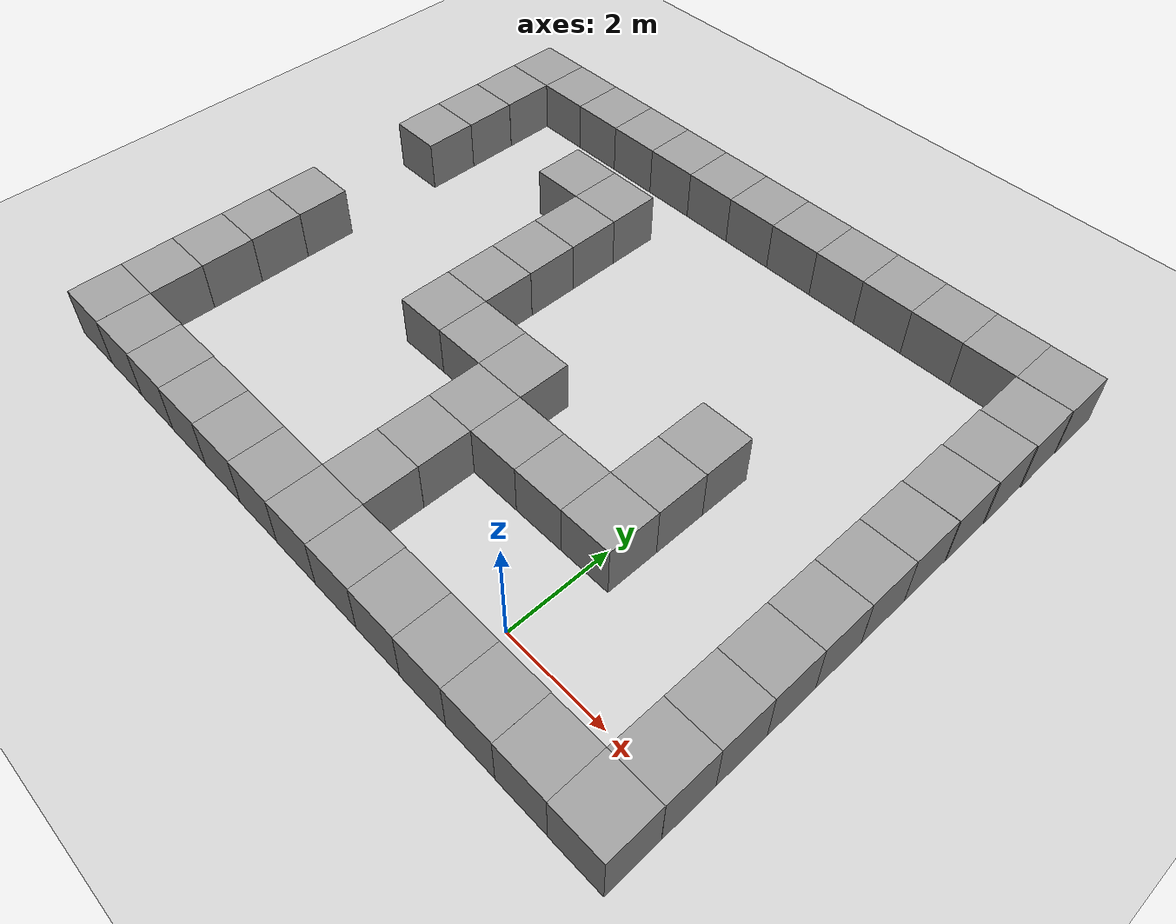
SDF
<sdf version="1.6">
 <world name="default">
  <light name="sun" type="directional">
   <pose>0 0 10 0 -0 0</pose>
   <diffuse>0.8 0.8 0.8 1</diffuse>
   <specular>0.2 0.2 0.2 1</specular>
   <attenuation>
    <range>1000</range>
    <constant>0.9</constant>
    <linear>0.01</linear>
    <quadratic>0.001</quadratic>
   </attenuation>
   <direction>-0.5 0.1 -0.9</direction>
  </light>
  <model name="ground_plane">
   <static>1</static>
   <link name="link">
    <collision name="collision">
     <geometry><plane><normal>0 0 1</normal><size>100 100</size></plane></geometry>
     <surface>
      <contact><collide_bitmask>65535</collide_bitmask></contact>
      <friction><ode><mu>100</mu><mu2>50</mu2></ode></friction>
     </surface>
    </collision>
    <visual name="visual">
     <cast_shadows>0</cast_shadows>
     <geometry><plane><normal>0 0 1</normal><size>100 100</size></plane></geometry>
     <material>
      <script><uri>file://media/materials/scripts/gazebo.material</uri><name>Gazebo/Grey</name></script>
     </material>
    </visual>
   </link>
  </model>
  <gravity>0 0 -9.8</gravity>
  <magnetic_field>6e-06 2.3e-05 -4.2e-05</magnetic_field>
  <atmosphere type="adiabatic"/>
  <physics name="default_physics" default="0" type="ode">
   <max_step_size>0.001</max_step_size>
   <real_time_factor>1</real_time_factor>
   <real_time_update_rate>1000</real_time_update_rate>
  </physics>
  <scene><ambient>0.4 0.4 0.4 1</ambient><background>0.7 0.7 0.7 1</background><shadows>1</shadows></scene>
  <audio><device>default</device></audio>
  <spherical_coordinates>
   <surface_model>EARTH_WGS84</surface_model>
   <latitude_deg>0</latitude_deg>
   <longitude_deg>0</longitude_deg>
   <elevation>0</elevation>
   <heading_deg>0</heading_deg>
  </spherical_coordinates>
  <model name="unit_box">
   <pose>1 -1 0.5 0 -0 0.004024</pose>
   <link name="link">
    <inertial>
     <mass>1</mass>
     <inertia>
      <ixx>0.166667</ixx>
      <ixy>0</ixy>
      <ixz>0</ixz>
      <iyy>0.166667</iyy>
      <iyz>0</iyz>
      <izz>0.166667</izz>
     </inertia>
    </inertial>
    <collision name="collision"><geometry><box><size>1 1 1</size></box></geometry></collision>
    <visual name="visual">
     <geometry><box><size>1 1 1</size></box></geometry>
     <material>
      <script><name>Gazebo/Grey</name><uri>file://media/materials/scripts/gazebo.material</uri></script>
     </material>
    </visual>
   </link>
  </model>
  <model name="unit_box_0">
   <pose>2 -1 0.5 0 -0 0.004728</pose>
   <link name="link">
    <inertial>
     <mass>1</mass>
     <inertia>
      <ixx>0.166667</ixx>
      <ixy>0</ixy>
      <ixz>0</ixz>
      <iyy>0.166667</iyy>
      <iyz>0</iyz>
      <izz>0.166667</izz>
     </inertia>
    </inertial>
    <collision name="collision"><geometry><box><size>1 1 1</size></box></geometry></collision>
    <visual name="visual">
     <geometry><box><size>1 1 1</size></box></geometry>
     <material>
      <script><name>Gazebo/Grey</name><uri>file://media/materials/scripts/gazebo.material</uri></script>
     </material>
    </visual>
   </link>
  </model>
  <model name="unit_box_1">
   <pose>3 -1 0.5 0 -0 0.004727</pose>
   <link name="link">
    <inertial>
     <mass>1</mass>
     <inertia>
      <ixx>0.166667</ixx>
      <ixy>0</ixy>
      <ixz>0</ixz>
      <iyy>0.166667</iyy>
      <iyz>0</iyz>
      <izz>0.166667</izz>
     </inertia>
    </inertial>
    <collision name="collision"><geometry><box><size>1 1 1</size></box></geometry></collision>
    <visual name="visual">
     <geometry><box><size>1 1 1</size></box></geometry>
     <material>
      <script><name>Gazebo/Grey</name><uri>file://media/materials/scripts/gazebo.material</uri></script>
     </material>
    </visual>
   </link>
  </model>
  <model name="unit_box_3">
   <pose>-9 -1 0.5 0 -0 0.001321</pose>
   <link name="link">
    <inertial>
     <mass>1</mass>
     <inertia>
      <ixx>0.166667</ixx>
      <ixy>0</ixy>
      <ixz>0</ixz>
      <iyy>0.166667</iyy>
      <iyz>0</iyz>
      <izz>0.166667</izz>
     </inertia>
    </inertial>
    <collision name="collision"><geometry><box><size>1 1 1</size></box></geometry></collision>
    <visual name="visual">
     <geometry><box><size>1 1 1</size></box></geometry>
     <material>
      <script><name>Gazebo/Grey</name><uri>file://media/materials/scripts/gazebo.material</uri></script>
     </material>
    </visual>
   </link>
  </model>
  <model name="unit_box_2">
   <pose>-8 -1 0.5 0 -0 0.00491</pose>
   <link name="link">
    <inertial>
     <mass>1</mass>
     <inertia>
      <ixx>0.166667</ixx>
      <ixy>0</ixy>
      <ixz>0</ixz>
      <iyy>0.166667</iyy>
      <iyz>0</iyz>
      <izz>0.166667</izz>
     </inertia>
    </inertial>
    <collision name="collision"><geometry><box><size>1 1 1</size></box></geometry></collision>
    <visual name="visual">
     <geometry><box><size>1 1 1</size></box></geometry>
     <material>
      <script><name>Gazebo/Grey</name><uri>file://media/materials/scripts/gazebo.material</uri></script>
     </material>
    </visual>
   </link>
  </model>
  <model name="unit_box_4">
   <pose>-7 -1 0.5 0 -0 0.005141</pose>
   <link name="link">
    <inertial>
     <mass>1</mass>
     <inertia>
      <ixx>0.166667</ixx>
      <ixy>0</ixy>
      <ixz>0</ixz>
      <iyy>0.166667</iyy>
      <iyz>0</iyz>
      <izz>0.166667</izz>
     </inertia>
    </inertial>
    <collision name="collision"><geometry><box><size>1 1 1</size></box></geometry></collision>
    <visual name="visual">
     <geometry><box><size>1 1 1</size></box></geometry>
     <material>
      <script><name>Gazebo/Grey</name><uri>file://media/materials/scripts/gazebo.material</uri></script>
     </material>
    </visual>
   </link>
  </model>
  <model name="unit_box_5">
   <pose>-6 -1 0.5 0 -0 0.005232</pose>
   <link name="link">
    <inertial>
     <mass>1</mass>
     <inertia>
      <ixx>0.166667</ixx>
      <ixy>0</ixy>
      <ixz>0</ixz>
      <iyy>0.166667</iyy>
      <iyz>0</iyz>
      <izz>0.166667</izz>
     </inertia>
    </inertial>
    <collision name="collision"><geometry><box><size>1 1 1</size></box></geometry></collision>
    <visual name="visual">
     <geometry><box><size>1 1 1</size></box></geometry>
     <material>
      <script><name>Gazebo/Grey</name><uri>file://media/materials/scripts/gazebo.material</uri></script>
     </material>
    </visual>
   </link>
  </model>
  <model name="unit_box_6">
   <pose>-5 -1 0.5 0 -0 0.005085</pose>
   <link name="link">
    <inertial>
     <mass>1</mass>
     <inertia>
      <ixx>0.166667</ixx>
      <ixy>0</ixy>
      <ixz>0</ixz>
      <iyy>0.166667</iyy>
      <iyz>0</iyz>
      <izz>0.166667</izz>
     </inertia>
    </inertial>
    <collision name="collision"><geometry><box><size>1 1 1</size></box></geometry></collision>
    <visual name="visual">
     <geometry><box><size>1 1 1</size></box></geometry>
     <material>
      <script><name>Gazebo/Grey</name><uri>file://media/materials/scripts/gazebo.material</uri></script>
     </material>
    </visual>
   </link>
  </model>
  <model name="unit_box_7">
   <pose>-4 -1 0.5 0 -0 0.003658</pose>
   <link name="link">
    <inertial>
     <mass>1</mass>
     <inertia>
      <ixx>0.166667</ixx>
      <ixy>0</ixy>
      <ixz>0</ixz>
      <iyy>0.166667</iyy>
      <iyz>0</iyz>
      <izz>0.166667</izz>
     </inertia>
    </inertial>
    <collision name="collision"><geometry><box><size>1 1 1</size></box></geometry></collision>
    <visual name="visual">
     <geometry><box><size>1 1 1</size></box></geometry>
     <material>
      <script><name>Gazebo/Grey</name><uri>file://media/materials/scripts/gazebo.material</uri></script>
     </material>
    </visual>
   </link>
  </model>
  <model name="unit_box_8">
   <pose>-3 -1 0.5 0 -0 0.003064</pose>
   <link name="link">
    <inertial>
     <mass>1</mass>
     <inertia>
      <ixx>0.166667</ixx>
      <ixy>0</ixy>
      <ixz>0</ixz>
      <iyy>0.166667</iyy>
      <iyz>0</iyz>
      <izz>0.166667</izz>
     </inertia>
    </inertial>
    <collision name="collision"><geometry><box><size>1 1 1</size></box></geometry></collision>
    <visual name="visual">
     <geometry><box><size>1 1 1</size></box></geometry>
     <material>
      <script><name>Gazebo/Grey</name><uri>file://media/materials/scripts/gazebo.material</uri></script>
     </material>
    </visual>
   </link>
  </model>
  <model name="unit_box_9">
   <pose>-2 -1 0.5 0 -0 0.00444</pose>
   <link name="link">
    <inertial>
     <mass>1</mass>
     <inertia>
      <ixx>0.166667</ixx>
      <ixy>0</ixy>
      <ixz>0</ixz>
      <iyy>0.166667</iyy>
      <iyz>0</iyz>
      <izz>0.166667</izz>
     </inertia>
    </inertial>
    <collision name="collision"><geometry><box><size>1 1 1</size></box></geometry></collision>
    <visual name="visual">
     <geometry><box><size>1 1 1</size></box></geometry>
     <material>
      <script><name>Gazebo/Grey</name><uri>file://media/materials/scripts/gazebo.material</uri></script>
     </material>
    </visual>
   </link>
  </model>
  <model name="unit_box_10">
   <pose>-1 -1 0.5 0 -0 0.004441</pose>
   <link name="link">
    <inertial>
     <mass>1</mass>
     <inertia>
      <ixx>0.166667</ixx>
      <ixy>0</ixy>
      <ixz>0</ixz>
      <iyy>0.166667</iyy>
      <iyz>0</iyz>
      <izz>0.166667</izz>
     </inertia>
    </inertial>
    <collision name="collision"><geometry><box><size>1 1 1</size></box></geometry></collision>
    <visual name="visual">
     <geometry><box><size>1 1 1</size></box></geometry>
     <material>
      <script><name>Gazebo/Grey</name><uri>file://media/materials/scripts/gazebo.material</uri></script>
     </material>
    </visual>
   </link>
  </model>
  <model name="unit_box_11">
   <pose>0 -1 0.5 0 -0 0.004438</pose>
   <link name="link">
    <inertial>
     <mass>1</mass>
     <inertia>
      <ixx>0.166667</ixx>
      <ixy>0</ixy>
      <ixz>0</ixz>
      <iyy>0.166667</iyy>
      <iyz>0</iyz>
      <izz>0.166667</izz>
     </inertia>
    </inertial>
    <collision name="collision"><geometry><box><size>1 1 1</size></box></geometry></collision>
    <visual name="visual">
     <geometry><box><size>1 1 1</size></box></geometry>
     <material>
      <script><name>Gazebo/Grey</name><uri>file://media/materials/scripts/gazebo.material</uri></script>
     </material>
    </visual>
   </link>
  </model>
  <model name="unit_box_12">
   <pose>-9 -0 0.5 0 -0 0.000629</pose>
   <link name="link">
    <inertial>
     <mass>1</mass>
     <inertia>
      <ixx>0.166667</ixx>
      <ixy>0</ixy>
      <ixz>0</ixz>
      <iyy>0.166667</iyy>
      <iyz>0</iyz>
      <izz>0.166667</izz>
     </inertia>
    </inertial>
    <collision name="collision"><geometry><box><size>1 1 1</size></box></geometry></collision>
    <visual name="visual">
     <geometry><box><size>1 1 1</size></box></geometry>
     <material>
      <script><name>Gazebo/Grey</name><uri>file://media/materials/scripts/gazebo.material</uri></script>
     </material>
    </visual>
   </link>
  </model>
  <model name="unit_box_13">
   <pose>-3 -0 0.5 0 -0 0.00068</pose>
   <link name="link">
    <inertial>
     <mass>1</mass>
     <inertia>
      <ixx>0.166667</ixx>
      <ixy>0</ixy>
      <ixz>0</ixz>
      <iyy>0.166667</iyy>
      <iyz>0</iyz>
      <izz>0.166667</izz>
     </inertia>
    </inertial>
    <collision name="collision"><geometry><box><size>1 1 1</size></box></geometry></collision>
    <visual name="visual">
     <geometry><box><size>1 1 1</size></box></geometry>
     <material>
      <script><name>Gazebo/Grey</name><uri>file://media/materials/scripts/gazebo.material</uri></script>
     </material>
    </visual>
   </link>
  </model>
  <model name="unit_box_14">
   <pose>-3 1 0.5 0 -0 0.00068</pose>
   <link name="link">
    <inertial>
     <mass>1</mass>
     <inertia>
      <ixx>0.166667</ixx>
      <ixy>0</ixy>
      <ixz>0</ixz>
      <iyy>0.166667</iyy>
      <iyz>0</iyz>
      <izz>0.166667</izz>
     </inertia>
    </inertial>
    <collision name="collision"><geometry><box><size>1 1 1</size></box></geometry></collision>
    <visual name="visual">
     <geometry><box><size>1 1 1</size></box></geometry>
     <material>
      <script><name>Gazebo/Grey</name><uri>file://media/materials/scripts/gazebo.material</uri></script>
     </material>
    </visual>
   </link>
  </model>
  <model name="unit_box_15">
   <pose>-3 2 0.5 0 -0 0.000619</pose>
   <link name="link">
    <inertial>
     <mass>1</mass>
     <inertia>
      <ixx>0.166667</ixx>
      <ixy>0</ixy>
      <ixz>0</ixz>
      <iyy>0.166667</iyy>
      <iyz>0</iyz>
      <izz>0.166667</izz>
     </inertia>
    </inertial>
    <collision name="collision"><geometry><box><size>1 1 1</size></box></geometry></collision>
    <visual name="visual">
     <geometry><box><size>1 1 1</size></box></geometry>
     <material>
      <script><name>Gazebo/Grey</name><uri>file://media/materials/scripts/gazebo.material</uri></script>
     </material>
    </visual>
   </link>
  </model>
  <model name="unit_box_16">
   <pose>-3 3 0.5 0 -0 0.001327</pose>
   <link name="link">
    <inertial>
     <mass>1</mass>
     <inertia>
      <ixx>0.166667</ixx>
      <ixy>0</ixy>
      <ixz>0</ixz>
      <iyy>0.166667</iyy>
      <iyz>0</iyz>
      <izz>0.166667</izz>
     </inertia>
    </inertial>
    <collision name="collision"><geometry><box><size>1 1 1</size></box></geometry></collision>
    <visual name="visual">
     <geometry><box><size>1 1 1</size></box></geometry>
     <material>
      <script><name>Gazebo/Grey</name><uri>file://media/materials/scripts/gazebo.material</uri></script>
     </material>
    </visual>
   </link>
  </model>
  <model name="unit_box_17">
   <pose>-4 3 0.5 0 -0 0.001326</pose>
   <link name="link">
    <inertial>
     <mass>1</mass>
     <inertia>
      <ixx>0.166667</ixx>
      <ixy>0</ixy>
      <ixz>0</ixz>
      <iyy>0.166667</iyy>
      <iyz>0</iyz>
      <izz>0.166667</izz>
     </inertia>
    </inertial>
    <collision name="collision"><geometry><box><size>1 1 1</size></box></geometry></collision>
    <visual name="visual">
     <geometry><box><size>1 1 1</size></box></geometry>
     <material>
      <script><name>Gazebo/Grey</name><uri>file://media/materials/scripts/gazebo.material</uri></script>
     </material>
    </visual>
   </link>
  </model>
  <model name="unit_box_18">
   <pose>-5 3 0.5 0 -0 0.000827</pose>
   <link name="link">
    <inertial>
     <mass>1</mass>
     <inertia>
      <ixx>0.166667</ixx>
      <ixy>0</ixy>
      <ixz>0</ixz>
      <iyy>0.166667</iyy>
      <iyz>0</iyz>
      <izz>0.166667</izz>
     </inertia>
    </inertial>
    <collision name="collision"><geometry><box><size>1 1 1</size></box></geometry></collision>
    <visual name="visual">
     <geometry><box><size>1 1 1</size></box></geometry>
     <material>
      <script><name>Gazebo/Grey</name><uri>file://media/materials/scripts/gazebo.material</uri></script>
     </material>
    </visual>
   </link>
  </model>
  <model name="unit_box_19">
   <pose>-5 4 0.5 0 -0 0.000773</pose>
   <link name="link">
    <inertial>
     <mass>1</mass>
     <inertia>
      <ixx>0.166667</ixx>
      <ixy>0</ixy>
      <ixz>0</ixz>
      <iyy>0.166667</iyy>
      <iyz>0</iyz>
      <izz>0.166667</izz>
     </inertia>
    </inertial>
    <collision name="collision"><geometry><box><size>1 1 1</size></box></geometry></collision>
    <visual name="visual">
     <geometry><box><size>1 1 1</size></box></geometry>
     <material>
      <script><name>Gazebo/Grey</name><uri>file://media/materials/scripts/gazebo.material</uri></script>
     </material>
    </visual>
   </link>
  </model>
  <model name="unit_box_20">
   <pose>-5 5 0.5 0 -0 0.000767</pose>
   <link name="link">
    <inertial>
     <mass>1</mass>
     <inertia>
      <ixx>0.166667</ixx>
      <ixy>0</ixy>
      <ixz>0</ixz>
      <iyy>0.166667</iyy>
      <iyz>0</iyz>
      <izz>0.166667</izz>
     </inertia>
    </inertial>
    <collision name="collision"><geometry><box><size>1 1 1</size></box></geometry></collision>
    <visual name="visual">
     <geometry><box><size>1 1 1</size></box></geometry>
     <material>
      <script><name>Gazebo/Grey</name><uri>file://media/materials/scripts/gazebo.material</uri></script>
     </material>
    </visual>
   </link>
  </model>
  <model name="unit_box_21">
   <pose>-5 6 0.5 0 -0 -1.3e-05</pose>
   <link name="link">
    <inertial>
     <mass>1</mass>
     <inertia>
      <ixx>0.166667</ixx>
      <ixy>0</ixy>
      <ixz>0</ixz>
      <iyy>0.166667</iyy>
      <iyz>0</iyz>
      <izz>0.166667</izz>
     </inertia>
    </inertial>
    <collision name="collision"><geometry><box><size>1 1 1</size></box></geometry></collision>
    <visual name="visual">
     <geometry><box><size>1 1 1</size></box></geometry>
     <material>
      <script><name>Gazebo/Grey</name><uri>file://media/materials/scripts/gazebo.material</uri></script>
     </material>
    </visual>
   </link>
  </model>
  <model name="unit_box_22">
   <pose>-5 7 0.5 0 -0 -1.3e-05</pose>
   <link name="link">
    <inertial>
     <mass>1</mass>
     <inertia>
      <ixx>0.166667</ixx>
      <ixy>0</ixy>
      <ixz>0</ixz>
      <iyy>0.166667</iyy>
      <iyz>0</iyz>
      <izz>0.166667</izz>
     </inertia>
    </inertial>
    <collision name="collision"><geometry><box><size>1 1 1</size></box></geometry></collision>
    <visual name="visual">
     <geometry><box><size>1 1 1</size></box></geometry>
     <material>
      <script><name>Gazebo/Grey</name><uri>file://media/materials/scripts/gazebo.material</uri></script>
     </material>
    </visual>
   </link>
  </model>
  <model name="unit_box_23">
   <pose>-6 7 0.5 0 -0 5e-06</pose>
   <link name="link">
    <inertial>
     <mass>1</mass>
     <inertia>
      <ixx>0.166667</ixx>
      <ixy>0</ixy>
      <ixz>0</ixz>
      <iyy>0.166667</iyy>
      <iyz>0</iyz>
      <izz>0.166667</izz>
     </inertia>
    </inertial>
    <collision name="collision"><geometry><box><size>1 1 1</size></box></geometry></collision>
    <visual name="visual">
     <geometry><box><size>1 1 1</size></box></geometry>
     <material>
      <script><name>Gazebo/Grey</name><uri>file://media/materials/scripts/gazebo.material</uri></script>
     </material>
    </visual>
   </link>
  </model>
  <model name="unit_box_24">
   <pose>-9 1 0.5 0 -0 0.000471</pose>
   <link name="link">
    <inertial>
     <mass>1</mass>
     <inertia>
      <ixx>0.166667</ixx>
      <ixy>0</ixy>
      <ixz>0</ixz>
      <iyy>0.166667</iyy>
      <iyz>0</iyz>
      <izz>0.166667</izz>
     </inertia>
    </inertial>
    <collision name="collision"><geometry><box><size>1 1 1</size></box></geometry></collision>
    <visual name="visual">
     <geometry><box><size>1 1 1</size></box></geometry>
     <material>
      <script><name>Gazebo/Grey</name><uri>file://media/materials/scripts/gazebo.material</uri></script>
     </material>
    </visual>
   </link>
  </model>
  <model name="unit_box_25">
   <pose>-9 2 0.499995 -1e-05 0 0.000464</pose>
   <link name="link">
    <inertial>
     <mass>1</mass>
     <inertia>
      <ixx>0.166667</ixx>
      <ixy>0</ixy>
      <ixz>0</ixz>
      <iyy>0.166667</iyy>
      <iyz>0</iyz>
      <izz>0.166667</izz>
     </inertia>
    </inertial>
    <collision name="collision"><geometry><box><size>1 1 1</size></box></geometry></collision>
    <visual name="visual">
     <geometry><box><size>1 1 1</size></box></geometry>
     <material>
      <script><name>Gazebo/Grey</name><uri>file://media/materials/scripts/gazebo.material</uri></script>
     </material>
    </visual>
   </link>
  </model>
  <model name="unit_box_26">
   <pose>-9 3 0.499995 1e-05 -0 0.000391</pose>
   <link name="link">
    <inertial>
     <mass>1</mass>
     <inertia>
      <ixx>0.166667</ixx>
      <ixy>0</ixy>
      <ixz>0</ixz>
      <iyy>0.166667</iyy>
      <iyz>0</iyz>
      <izz>0.166667</izz>
     </inertia>
    </inertial>
    <collision name="collision"><geometry><box><size>1 1 1</size></box></geometry></collision>
    <visual name="visual">
     <geometry><box><size>1 1 1</size></box></geometry>
     <material>
      <script><name>Gazebo/Grey</name><uri>file://media/materials/scripts/gazebo.material</uri></script>
     </material>
    </visual>
   </link>
  </model>
  <model name="unit_box_28">
   <pose>-9 6 0.5 0 -0 3.6e-05</pose>
   <link name="link">
    <inertial>
     <mass>1</mass>
     <inertia>
      <ixx>0.166667</ixx>
      <ixy>0</ixy>
      <ixz>0</ixz>
      <iyy>0.166667</iyy>
      <iyz>0</iyz>
      <izz>0.166667</izz>
     </inertia>
    </inertial>
    <collision name="collision"><geometry><box><size>1 1 1</size></box></geometry></collision>
    <visual name="visual">
     <geometry><box><size>1 1 1</size></box></geometry>
     <material>
      <script><name>Gazebo/Grey</name><uri>file://media/materials/scripts/gazebo.material</uri></script>
     </material>
    </visual>
   </link>
  </model>
  <model name="unit_box_29">
   <pose>-9 7 0.5 0 -0 0.000604</pose>
   <link name="link">
    <inertial>
     <mass>1</mass>
     <inertia>
      <ixx>0.166667</ixx>
      <ixy>0</ixy>
      <ixz>0</ixz>
      <iyy>0.166667</iyy>
      <iyz>0</iyz>
      <izz>0.166667</izz>
     </inertia>
    </inertial>
    <collision name="collision"><geometry><box><size>1 1 1</size></box></geometry></collision>
    <visual name="visual">
     <geometry><box><size>1 1 1</size></box></geometry>
     <material>
      <script><name>Gazebo/Grey</name><uri>file://media/materials/scripts/gazebo.material</uri></script>
     </material>
    </visual>
   </link>
  </model>
  <model name="unit_box_30">
   <pose>-9 8 0.5 0 -0 0.001294</pose>
   <link name="link">
    <inertial>
     <mass>1</mass>
     <inertia>
      <ixx>0.166667</ixx>
      <ixy>0</ixy>
      <ixz>0</ixz>
      <iyy>0.166667</iyy>
      <iyz>0</iyz>
      <izz>0.166667</izz>
     </inertia>
    </inertial>
    <collision name="collision"><geometry><box><size>1 1 1</size></box></geometry></collision>
    <visual name="visual">
     <geometry><box><size>1 1 1</size></box></geometry>
     <material>
      <script><name>Gazebo/Grey</name><uri>file://media/materials/scripts/gazebo.material</uri></script>
     </material>
    </visual>
   </link>
  </model>
  <model name="unit_box_31">
   <pose>-9 9 0.5 0 -0 0.000602</pose>
   <link name="link">
    <inertial>
     <mass>1</mass>
     <inertia>
      <ixx>0.166667</ixx>
      <ixy>0</ixy>
      <ixz>0</ixz>
      <iyy>0.166667</iyy>
      <iyz>0</iyz>
      <izz>0.166667</izz>
     </inertia>
    </inertial>
    <collision name="collision"><geometry><box><size>1 1 1</size></box></geometry></collision>
    <visual name="visual">
     <geometry><box><size>1 1 1</size></box></geometry>
     <material>
      <script><name>Gazebo/Grey</name><uri>file://media/materials/scripts/gazebo.material</uri></script>
     </material>
    </visual>
   </link>
  </model>
  <model name="unit_box_32">
   <pose>-8 9 0.5 0 -0 0.000618</pose>
   <link name="link">
    <inertial>
     <mass>1</mass>
     <inertia>
      <ixx>0.166667</ixx>
      <ixy>0</ixy>
      <ixz>0</ixz>
      <iyy>0.166667</iyy>
      <iyz>0</iyz>
      <izz>0.166667</izz>
     </inertia>
    </inertial>
    <collision name="collision"><geometry><box><size>1 1 1</size></box></geometry></collision>
    <visual name="visual">
     <geometry><box><size>1 1 1</size></box></geometry>
     <material>
      <script><name>Gazebo/Grey</name><uri>file://media/materials/scripts/gazebo.material</uri></script>
     </material>
    </visual>
   </link>
  </model>
  <model name="unit_box_33">
   <pose>-7 9 0.499995 0 -1e-05 0.00062</pose>
   <link name="link">
    <inertial>
     <mass>1</mass>
     <inertia>
      <ixx>0.166667</ixx>
      <ixy>0</ixy>
      <ixz>0</ixz>
      <iyy>0.166667</iyy>
      <iyz>0</iyz>
      <izz>0.166667</izz>
     </inertia>
    </inertial>
    <collision name="collision"><geometry><box><size>1 1 1</size></box></geometry></collision>
    <visual name="visual">
     <geometry><box><size>1 1 1</size></box></geometry>
     <material>
      <script><name>Gazebo/Grey</name><uri>file://media/materials/scripts/gazebo.material</uri></script>
     </material>
    </visual>
   </link>
  </model>
  <model name="unit_box_34">
   <pose>-6 9 0.5 0 -0 0.000632</pose>
   <link name="link">
    <inertial>
     <mass>1</mass>
     <inertia>
      <ixx>0.166667</ixx>
      <ixy>0</ixy>
      <ixz>0</ixz>
      <iyy>0.166667</iyy>
      <iyz>0</iyz>
      <izz>0.166667</izz>
     </inertia>
    </inertial>
    <collision name="collision"><geometry><box><size>1 1 1</size></box></geometry></collision>
    <visual name="visual">
     <geometry><box><size>1 1 1</size></box></geometry>
     <material>
      <script><name>Gazebo/Grey</name><uri>file://media/materials/scripts/gazebo.material</uri></script>
     </material>
    </visual>
   </link>
  </model>
  <model name="unit_box_35">
   <pose>-5 9 0.5 0 -0 0.001935</pose>
   <link name="link">
    <inertial>
     <mass>1</mass>
     <inertia>
      <ixx>0.166667</ixx>
      <ixy>0</ixy>
      <ixz>0</ixz>
      <iyy>0.166667</iyy>
      <iyz>0</iyz>
      <izz>0.166667</izz>
     </inertia>
    </inertial>
    <collision name="collision"><geometry><box><size>1 1 1</size></box></geometry></collision>
    <visual name="visual">
     <geometry><box><size>1 1 1</size></box></geometry>
     <material>
      <script><name>Gazebo/Grey</name><uri>file://media/materials/scripts/gazebo.material</uri></script>
     </material>
    </visual>
   </link>
  </model>
  <model name="unit_box_36">
   <pose>-4 9 0.5 0 -0 0.001932</pose>
   <link name="link">
    <inertial>
     <mass>1</mass>
     <inertia>
      <ixx>0.166667</ixx>
      <ixy>0</ixy>
      <ixz>0</ixz>
      <iyy>0.166667</iyy>
      <iyz>0</iyz>
      <izz>0.166667</izz>
     </inertia>
    </inertial>
    <collision name="collision"><geometry><box><size>1 1 1</size></box></geometry></collision>
    <visual name="visual">
     <geometry><box><size>1 1 1</size></box></geometry>
     <material>
      <script><name>Gazebo/Grey</name><uri>file://media/materials/scripts/gazebo.material</uri></script>
     </material>
    </visual>
   </link>
  </model>
  <model name="unit_box_37">
   <pose>-3 9 0.5 0 -0 0.001727</pose>
   <link name="link">
    <inertial>
     <mass>1</mass>
     <inertia>
      <ixx>0.166667</ixx>
      <ixy>0</ixy>
      <ixz>0</ixz>
      <iyy>0.166667</iyy>
      <iyz>0</iyz>
      <izz>0.166667</izz>
     </inertia>
    </inertial>
    <collision name="collision"><geometry><box><size>1 1 1</size></box></geometry></collision>
    <visual name="visual">
     <geometry><box><size>1 1 1</size></box></geometry>
     <material>
      <script><name>Gazebo/Grey</name><uri>file://media/materials/scripts/gazebo.material</uri></script>
     </material>
    </visual>
   </link>
  </model>
  <model name="unit_box_38">
   <pose>-2 9 0.5 -0 1e-06 0.001755</pose>
   <link name="link">
    <inertial>
     <mass>1</mass>
     <inertia>
      <ixx>0.166667</ixx>
      <ixy>0</ixy>
      <ixz>0</ixz>
      <iyy>0.166667</iyy>
      <iyz>0</iyz>
      <izz>0.166667</izz>
     </inertia>
    </inertial>
    <collision name="collision"><geometry><box><size>1 1 1</size></box></geometry></collision>
    <visual name="visual">
     <geometry><box><size>1 1 1</size></box></geometry>
     <material>
      <script><name>Gazebo/Grey</name><uri>file://media/materials/scripts/gazebo.material</uri></script>
     </material>
    </visual>
   </link>
  </model>
  <model name="unit_box_39">
   <pose>3 -0 0.5 0 -0 5e-06</pose>
   <link name="link">
    <inertial>
     <mass>1</mass>
     <inertia>
      <ixx>0.166667</ixx>
      <ixy>0</ixy>
      <ixz>0</ixz>
      <iyy>0.166667</iyy>
      <iyz>0</iyz>
      <izz>0.166667</izz>
     </inertia>
    </inertial>
    <collision name="collision"><geometry><box><size>1 1 1</size></box></geometry></collision>
    <visual name="visual">
     <geometry><box><size>1 1 1</size></box></geometry>
     <material>
      <script><name>Gazebo/Grey</name><uri>file://media/materials/scripts/gazebo.material</uri></script>
     </material>
    </visual>
   </link>
  </model>
  <model name="unit_box_40">
   <pose>3 1 0.5 0 -0 5e-06</pose>
   <link name="link">
    <inertial>
     <mass>1</mass>
     <inertia>
      <ixx>0.166667</ixx>
      <ixy>0</ixy>
      <ixz>0</ixz>
      <iyy>0.166667</iyy>
      <iyz>0</iyz>
      <izz>0.166667</izz>
     </inertia>
    </inertial>
    <collision name="collision"><geometry><box><size>1 1 1</size></box></geometry></collision>
    <visual name="visual">
     <geometry><box><size>1 1 1</size></box></geometry>
     <material>
      <script><name>Gazebo/Grey</name><uri>file://media/materials/scripts/gazebo.material</uri></script>
     </material>
    </visual>
   </link>
  </model>
  <model name="unit_box_41">
   <pose>3 2 0.5 0 -0 0</pose>
   <link name="link">
    <inertial>
     <mass>1</mass>
     <inertia>
      <ixx>0.166667</ixx>
      <ixy>0</ixy>
      <ixz>0</ixz>
      <iyy>0.166667</iyy>
      <iyz>0</iyz>
      <izz>0.166667</izz>
     </inertia>
    </inertial>
    <collision name="collision"><geometry><box><size>1 1 1</size></box></geometry></collision>
    <visual name="visual">
     <geometry><box><size>1 1 1</size></box></geometry>
     <material>
      <script><name>Gazebo/Grey</name><uri>file://media/materials/scripts/gazebo.material</uri></script>
     </material>
    </visual>
   </link>
  </model>
  <model name="unit_box_42">
   <pose>-2 2 0.5 0 -0 0.000347</pose>
   <link name="link">
    <inertial>
     <mass>1</mass>
     <inertia>
      <ixx>0.166667</ixx>
      <ixy>0</ixy>
      <ixz>0</ixz>
      <iyy>0.166667</iyy>
      <iyz>0</iyz>
      <izz>0.166667</izz>
     </inertia>
    </inertial>
    <collision name="collision"><geometry><box><size>1 1 1</size></box></geometry></collision>
    <visual name="visual">
     <geometry><box><size>1 1 1</size></box></geometry>
     <material>
      <script><name>Gazebo/Grey</name><uri>file://media/materials/scripts/gazebo.material</uri></script>
     </material>
    </visual>
   </link>
  </model>
  <model name="unit_box_43">
   <pose>-1 2 0.5 0 -0 0.000231</pose>
   <link name="link">
    <inertial>
     <mass>1</mass>
     <inertia>
      <ixx>0.166667</ixx>
      <ixy>0</ixy>
      <ixz>0</ixz>
      <iyy>0.166667</iyy>
      <iyz>0</iyz>
      <izz>0.166667</izz>
     </inertia>
    </inertial>
    <collision name="collision"><geometry><box><size>1 1 1</size></box></geometry></collision>
    <visual name="visual">
     <geometry><box><size>1 1 1</size></box></geometry>
     <material>
      <script><name>Gazebo/Grey</name><uri>file://media/materials/scripts/gazebo.material</uri></script>
     </material>
    </visual>
   </link>
  </model>
  <model name="unit_box_44">
   <pose>-0 2 0.5 0 -0 -5.9e-05</pose>
   <link name="link">
    <inertial>
     <mass>1</mass>
     <inertia>
      <ixx>0.166667</ixx>
      <ixy>0</ixy>
      <ixz>0</ixz>
      <iyy>0.166667</iyy>
      <iyz>0</iyz>
      <izz>0.166667</izz>
     </inertia>
    </inertial>
    <collision name="collision"><geometry><box><size>1 1 1</size></box></geometry></collision>
    <visual name="visual">
     <geometry><box><size>1 1 1</size></box></geometry>
     <material>
      <script><name>Gazebo/Grey</name><uri>file://media/materials/scripts/gazebo.material</uri></script>
     </material>
    </visual>
   </link>
  </model>
  <model name="unit_box_45">
   <pose>-0 3 0.5 0 -0 -6.9e-05</pose>
   <link name="link">
    <inertial>
     <mass>1</mass>
     <inertia>
      <ixx>0.166667</ixx>
      <ixy>0</ixy>
      <ixz>0</ixz>
      <iyy>0.166667</iyy>
      <iyz>0</iyz>
      <izz>0.166667</izz>
     </inertia>
    </inertial>
    <collision name="collision"><geometry><box><size>1 1 1</size></box></geometry></collision>
    <visual name="visual">
     <geometry><box><size>1 1 1</size></box></geometry>
     <material>
      <script><name>Gazebo/Grey</name><uri>file://media/materials/scripts/gazebo.material</uri></script>
     </material>
    </visual>
   </link>
  </model>
  <model name="unit_box_46">
   <pose>-0 4 0.5 0 -0 5e-06</pose>
   <link name="link">
    <inertial>
     <mass>1</mass>
     <inertia>
      <ixx>0.166667</ixx>
      <ixy>0</ixy>
      <ixz>0</ixz>
      <iyy>0.166667</iyy>
      <iyz>0</iyz>
      <izz>0.166667</izz>
     </inertia>
    </inertial>
    <collision name="collision"><geometry><box><size>1 1 1</size></box></geometry></collision>
    <visual name="visual">
     <geometry><box><size>1 1 1</size></box></geometry>
     <material>
      <script><name>Gazebo/Grey</name><uri>file://media/materials/scripts/gazebo.material</uri></script>
     </material>
    </visual>
   </link>
  </model>
  <model name="unit_box_47">
   <pose>3 3 0.5 0 -0 1e-06</pose>
   <link name="link">
    <inertial>
     <mass>1</mass>
     <inertia>
      <ixx>0.166667</ixx>
      <ixy>0</ixy>
      <ixz>0</ixz>
      <iyy>0.166667</iyy>
      <iyz>0</iyz>
      <izz>0.166667</izz>
     </inertia>
    </inertial>
    <collision name="collision"><geometry><box><size>1 1 1</size></box></geometry></collision>
    <visual name="visual">
     <geometry><box><size>1 1 1</size></box></geometry>
     <material>
      <script><name>Gazebo/Grey</name><uri>file://media/materials/scripts/gazebo.material</uri></script>
     </material>
    </visual>
   </link>
  </model>
  <model name="unit_box_48">
   <pose>3 4 0.499995 0 1e-05 0.000696</pose>
   <link name="link">
    <inertial>
     <mass>1</mass>
     <inertia>
      <ixx>0.166667</ixx>
      <ixy>0</ixy>
      <ixz>0</ixz>
      <iyy>0.166667</iyy>
      <iyz>0</iyz>
      <izz>0.166667</izz>
     </inertia>
    </inertial>
    <collision name="collision"><geometry><box><size>1 1 1</size></box></geometry></collision>
    <visual name="visual">
     <geometry><box><size>1 1 1</size></box></geometry>
     <material>
      <script><name>Gazebo/Grey</name><uri>file://media/materials/scripts/gazebo.material</uri></script>
     </material>
    </visual>
   </link>
  </model>
  <model name="unit_box_49">
   <pose>3 5 0.5 0 -0 0.000937</pose>
   <link name="link">
    <inertial>
     <mass>1</mass>
     <inertia>
      <ixx>0.166667</ixx>
      <ixy>0</ixy>
      <ixz>0</ixz>
      <iyy>0.166667</iyy>
      <iyz>0</iyz>
      <izz>0.166667</izz>
     </inertia>
    </inertial>
    <collision name="collision"><geometry><box><size>1 1 1</size></box></geometry></collision>
    <visual name="visual">
     <geometry><box><size>1 1 1</size></box></geometry>
     <material>
      <script><name>Gazebo/Grey</name><uri>file://media/materials/scripts/gazebo.material</uri></script>
     </material>
    </visual>
   </link>
  </model>
  <model name="unit_box_50">
   <pose>3 6 0.5 0 -0 0.014508</pose>
   <link name="link">
    <inertial>
     <mass>1</mass>
     <inertia>
      <ixx>0.166667</ixx>
      <ixy>0</ixy>
      <ixz>0</ixz>
      <iyy>0.166667</iyy>
      <iyz>0</iyz>
      <izz>0.166667</izz>
     </inertia>
    </inertial>
    <collision name="collision"><geometry><box><size>1 1 1</size></box></geometry></collision>
    <visual name="visual">
     <geometry><box><size>1 1 1</size></box></geometry>
     <material>
      <script><name>Gazebo/Grey</name><uri>file://media/materials/scripts/gazebo.material</uri></script>
     </material>
    </visual>
   </link>
  </model>
  <model name="unit_box_51">
   <pose>3 7 0.5 0 -0 0.01457</pose>
   <link name="link">
    <inertial>
     <mass>1</mass>
     <inertia>
      <ixx>0.166667</ixx>
      <ixy>0</ixy>
      <ixz>0</ixz>
      <iyy>0.166667</iyy>
      <iyz>0</iyz>
      <izz>0.166667</izz>
     </inertia>
    </inertial>
    <collision name="collision"><geometry><box><size>1 1 1</size></box></geometry></collision>
    <visual name="visual">
     <geometry><box><size>1 1 1</size></box></geometry>
     <material>
      <script><name>Gazebo/Grey</name><uri>file://media/materials/scripts/gazebo.material</uri></script>
     </material>
    </visual>
   </link>
  </model>
  <model name="unit_box_52">
   <pose>3 8 0.5 0 -0 0.014565</pose>
   <link name="link">
    <inertial>
     <mass>1</mass>
     <inertia>
      <ixx>0.166667</ixx>
      <ixy>0</ixy>
      <ixz>0</ixz>
      <iyy>0.166667</iyy>
      <iyz>0</iyz>
      <izz>0.166667</izz>
     </inertia>
    </inertial>
    <collision name="collision"><geometry><box><size>1 1 1</size></box></geometry></collision>
    <visual name="visual">
     <geometry><box><size>1 1 1</size></box></geometry>
     <material>
      <script><name>Gazebo/Grey</name><uri>file://media/materials/scripts/gazebo.material</uri></script>
     </material>
    </visual>
   </link>
  </model>
  <model name="unit_box_53">
   <pose>3 9 0.5 0 -0 0.00318</pose>
   <link name="link">
    <inertial>
     <mass>1</mass>
     <inertia>
      <ixx>0.166667</ixx>
      <ixy>0</ixy>
      <ixz>0</ixz>
      <iyy>0.166667</iyy>
      <iyz>0</iyz>
      <izz>0.166667</izz>
     </inertia>
    </inertial>
    <collision name="collision"><geometry><box><size>1 1 1</size></box></geometry></collision>
    <visual name="visual">
     <geometry><box><size>1 1 1</size></box></geometry>
     <material>
      <script><name>Gazebo/Grey</name><uri>file://media/materials/scripts/gazebo.material</uri></script>
     </material>
    </visual>
   </link>
  </model>
  <model name="unit_box_54">
   <pose>-1 9 0.5 0 -0 0.001725</pose>
   <link name="link">
    <inertial>
     <mass>1</mass>
     <inertia>
      <ixx>0.166667</ixx>
      <ixy>0</ixy>
      <ixz>0</ixz>
      <iyy>0.166667</iyy>
      <iyz>0</iyz>
      <izz>0.166667</izz>
     </inertia>
    </inertial>
    <collision name="collision"><geometry><box><size>1 1 1</size></box></geometry></collision>
    <visual name="visual">
     <geometry><box><size>1 1 1</size></box></geometry>
     <material>
      <script><name>Gazebo/Grey</name><uri>file://media/materials/scripts/gazebo.material</uri></script>
     </material>
    </visual>
   </link>
  </model>
  <model name="unit_box_55">
   <pose>0 9 0.5 0 -0 0.001753</pose>
   <link name="link">
    <inertial>
     <mass>1</mass>
     <inertia>
      <ixx>0.166667</ixx>
      <ixy>0</ixy>
      <ixz>0</ixz>
      <iyy>0.166667</iyy>
      <iyz>0</iyz>
      <izz>0.166667</izz>
     </inertia>
    </inertial>
    <collision name="collision"><geometry><box><size>1 1 1</size></box></geometry></collision>
    <visual name="visual">
     <geometry><box><size>1 1 1</size></box></geometry>
     <material>
      <script><name>Gazebo/Grey</name><uri>file://media/materials/scripts/gazebo.material</uri></script>
     </material>
    </visual>
   </link>
  </model>
  <model name="unit_box_56">
   <pose>1 9 0.5 0 -0 0.003215</pose>
   <link name="link">
    <inertial>
     <mass>1</mass>
     <inertia>
      <ixx>0.166667</ixx>
      <ixy>0</ixy>
      <ixz>0</ixz>
      <iyy>0.166667</iyy>
      <iyz>0</iyz>
      <izz>0.166667</izz>
     </inertia>
    </inertial>
    <collision name="collision"><geometry><box><size>1 1 1</size></box></geometry></collision>
    <visual name="visual">
     <geometry><box><size>1 1 1</size></box></geometry>
     <material>
      <script><name>Gazebo/Grey</name><uri>file://media/materials/scripts/gazebo.material</uri></script>
     </material>
    </visual>
   </link>
  </model>
  <model name="unit_box_57">
   <pose>2 9 0.5 0 -0 0.003201</pose>
   <link name="link">
    <inertial>
     <mass>1</mass>
     <inertia>
      <ixx>0.166667</ixx>
      <ixy>0</ixy>
      <ixz>0</ixz>
      <iyy>0.166667</iyy>
      <iyz>0</iyz>
      <izz>0.166667</izz>
     </inertia>
    </inertial>
    <collision name="collision"><geometry><box><size>1 1 1</size></box></geometry></collision>
    <visual name="visual">
     <geometry><box><size>1 1 1</size></box></geometry>
     <material>
      <script><name>Gazebo/Grey</name><uri>file://media/materials/scripts/gazebo.material</uri></script>
     </material>
    </visual>
   </link>
  </model>
 </world>
</sdf>
